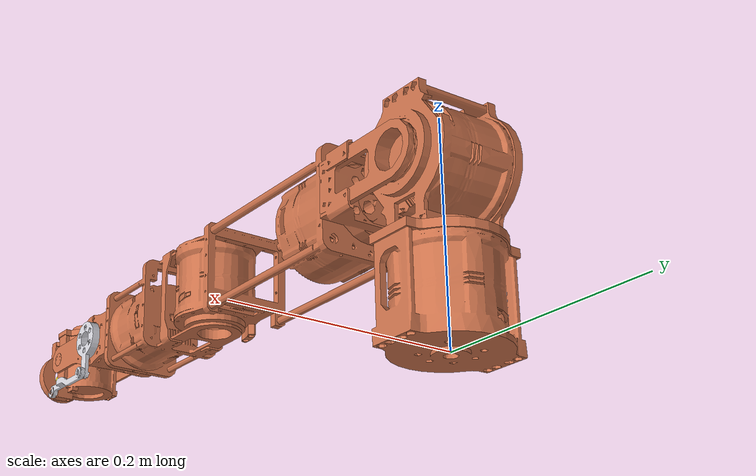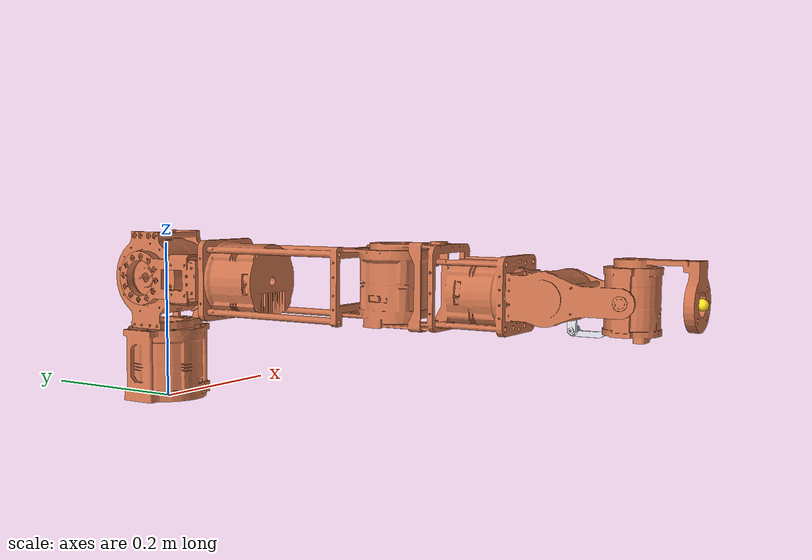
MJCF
<mujoco model="RightArm">
  <compiler angle="radian" meshdir="../meshes" autolimits="true"/>
  <option timestep="0.00050000000000000001" gravity="0 0 -9.8066499999999994" integrator="implicitfast">
    <flag contact="disable"/>
  </option>
  <default>
    <geom contype="0" conaffinity="0" group="1"/>
    <joint damping="0" armature="0" frictionloss="0"/>
  </default>
  <asset>
    <material name="arm" rgba="0.80 0.45 0.30 1"/>
    <material name="link" rgba="0.85 0.85 0.88 1"/>
    <mesh name="body0" file="RA_body0.stl"/>
    <mesh name="body1" file="RA_body1.stl"/>
    <mesh name="body2" file="RA_body2.stl"/>
    <mesh name="body3" file="RA_body3.stl"/>
    <mesh name="body4" file="RA_body4.stl"/>
    <mesh name="body5" file="RA_body5.stl"/>
    <mesh name="body6" file="RA_body6.stl"/>
    <mesh name="body6_1" file="RA_body6_1.stl"/>
    <mesh name="body6_2" file="RA_body6_2.stl"/>
    <mesh name="body7" file="RA_body7.stl"/>
  </asset>
  <worldbody>
    <body gravcomp="1" name="body0">
      <inertial pos="0.00012770520196475298 9.1361610239260553e-05 0.04571399838334321" quat="0.6535443661797038 -0.66947149876892997 -0.23812575382558515 -0.26073703061868425" mass="0.22506118803030101" diaginertia="0.00038989042311014333 0.00039101412526498319 0.00047745618191614449"/>
      <geom name="body0" type="mesh" mesh="body0" pos="0 0 0" quat="1 0 0 0" material="arm"/>
      <body gravcomp="1" name="body1" pos="0 0 0.087999999999999995" quat="0.70710678118654635 5.5114950436610495e-19 -5.5114950436612402e-19 0.70710678118654868">
        <inertial pos="0.0001200000000000391 0.0051600000000000005 0.067040000000000016" quat="0.0093791081210858693 0.71254226616800653 -0.0094392613545968545 -0.70150299471926292" mass="1.6893313299999999" diaginertia="0.00072591301083000011 0.00087121415936000006 0.0011051409326699999"/>
        <joint name="joint1" type="hinge" axis="0 0 1"/>
        <geom name="body1" type="mesh" mesh="body1" pos="0 0 0" quat="1 0 0 0" material="arm"/>
        <body gravcomp="1" name="body2" pos="5.6843418860808016e-17 0 0.068999999999999978" quat="0.70710678118654624 -0.70710678118654879 1.3246252948841205e-15 -3.6130749672804068e-15">
          <inertial pos="-0.054609999999999929 -2.0110493623551311e-16 0.0014199999999998092" quat="0.61880287621742269 -0.6189975979942054 -0.34199933542850425 -0.34199624066488005" mass="0.28492247999999998" diaginertia="0.00050851407026000013 0.00062434844308000004 0.00092577401321000045"/>
          <joint name="joint2" type="hinge" axis="0 0 1"/>
          <geom name="body2" type="mesh" mesh="body2" pos="0 0 0" quat="1 0 0 0" material="arm"/>
          <body gravcomp="1" name="body3" pos="5.6843418860808016e-17 0 1.8143800820083272e-31" quat="0.50000000000000344 -0.49999999999999989 0.5 -0.49999999999999667">
            <inertial pos="-6.000000000069118e-05 -0.0028999999999993159 -0.21154000000000012" quat="0.99967355976481898 0.0156700211630467 -0.00048513764667103244 -0.020173968011982756" mass="2.77074" diaginertia="0.0023939762876900006 0.03039982470298001 0.030565316794150001"/>
            <joint name="joint3" type="hinge" axis="0 0 1"/>
            <geom name="body3" type="mesh" mesh="body3" pos="0 0 0" quat="1 0 0 0" material="arm"/>
            <body gravcomp="1" name="body4" pos="-1.1368683772161603e-15 1.1082635780607589e-15 -0.34300000000000014" quat="0.49999999999999911 0.50000000000000255 0.49999999999999922 0.49999999999999911">
              <inertial pos="1.027e-05 -0.11099718999999997 0.00086007999999995928" quat="0.52765148426945974 -0.47087420763857035 -0.53292684611590269 0.46459699570481711" mass="1.0636289400000001" diaginertia="0.0012926655092700004 0.002013978504470001 0.0021339417205499998"/>
              <joint name="joint4" type="hinge" axis="0 0 1"/>
              <geom name="body4" type="mesh" mesh="body4" pos="0 0 0" quat="1 0 0 0" material="arm"/>
              <body gravcomp="1" name="body5" pos="0 0 0" quat="0.70710678118654624 0.70710678118654879 0 0">
                <inertial pos="0.00278232 -0.00057071999999933716 0.1940323600000001" quat="0.64947998209879554 -0.66250655821859161 0.25198395059485407 0.27525424940028503" mass="0.50246429000000004" diaginertia="0.00036873810948000001 0.00040056636726000007 0.00053582859242000045"/>
                <joint name="joint5" type="hinge" axis="0 0 1"/>
                <geom name="body5" type="mesh" mesh="body5" pos="0 0 0" quat="1 0 0 0" material="arm"/>
                <body gravcomp="1" name="body6" pos="0 9.0949470177292826e-16 0.27400000000000008" quat="0.5 0.50000000000000167 0.50000000000000011 0.49999999999999833">
                  <inertial pos="0.0020795900000000148 0.00067135999999999867 0.0004178499999999904" quat="0.69911865758317926 0.71131555756622311 0.019598783256876716 -0.069851040637892839" mass="0.43643890000000002" diaginertia="0.00022973661308000009 0.00029416392968000009 0.00032880413160000013"/>
                  <joint name="joint6" type="hinge" axis="0 0 1"/>
                  <geom name="body6" type="mesh" mesh="body6" pos="0 0 0" quat="1 0 0 0" material="arm"/>
                  <body gravcomp="1" name="body6_1" pos="-0.039001995086748904 -9.8826060974488424e-07 0.043799999999654234" quat="1 -5.745183734802853e-32 1.6714233167284595e-31 -1.1046593809031588e-18">
                    <inertial pos="0.00063406033682392778 -0.038599866212972983 0.0011046676994783315" quat="0.67192117085257386 -0.21958076417444045 -0.28552398828206704 0.64713389671703725" mass="0.0073318301935494804" diaginertia="5.153525717408367e-07 5.5489111252506328e-06 6.0642030549609197e-06"/>
                    <joint name="joint6_1" type="hinge" axis="0 0 1"/>
                    <geom name="body6_1" type="mesh" mesh="body6_1" pos="0 0 0" quat="1 0 0 0" material="link"/>
                    <body gravcomp="1" name="body6_2" pos="1.9950990897825705e-06 -0.079999999975114033 0.007000000000089884" quat="1 -5.745183734802853e-32 1.6714233167284595e-31 -1.1046593809031588e-18">
                      <inertial pos="0.033589619434186008 8.5114222884729412e-07 -0.0098189059218012145" quat="0.99858245324940198 4.4309279586938388e-06 -8.1239472323267875e-06 -0.053226722393685394" mass="0.020689757859853899" diaginertia="2.1338943438120754e-06 5.4407092235939467e-06 7.2435213596139281e-06"/>
                      <joint name="joint6_2" type="hinge" axis="0 0 1"/>
                      <geom name="body6_2" type="mesh" mesh="body6_2" pos="0 0 0" quat="1 0 0 0" material="link"/>
                    </body>
                  </body>
                  <body gravcomp="1" name="body7" pos="0 0 0" quat="0.50000000000000167 0.5 0.50000000000000178 0.49999999999999661">
                    <inertial pos="0.045852704199999997 -0.00010924339999983992 0.017417087799999956" quat="0.67831682640419522 0.67374628826443639 0.20672551640694647 -0.20788646645012129" mass="0.092255301400000003" diaginertia="3.536857528200002e-05 0.00010400188325830003 0.00011034316465130009"/>
                    <joint name="joint7" type="hinge" axis="0 0 1"/>
                    <geom name="body7" type="mesh" mesh="body7" pos="0 0 0" quat="1 0 0 0" material="arm"/>
                    <site name="tool" pos="0.06849999999999995 2.3916647171075452e-16 -5.6843418860808016e-17" quat="1 -1.4816809819461326e-32 7.794431039697685e-19 1.5487957239772115e-31" size="0.006" rgba="1 0.9 0.1 1" group="2"/>
                  </body>
                </body>
              </body>
            </body>
          </body>
        </body>
      </body>
    </body>
  </worldbody>
  <equality>
    <!-- RecurDyn RevJoint6_3@RightArm: revolute about x, closed as a point (planar loop) -->
    <connect name="joint6_3" body1="body5" body2="body6_2" anchor="0.0447999999997446 -1.793409865058493e-13 0.19400000000005602" solref="0.002 1" solimp="0.98999999999999999 0.999 0.0001 0.5 2"/>
  </equality>
  <actuator>
    <position name="servo1" joint="joint1" kp="449.432" kv="35.7647" ctrlrange="-3.141593 3.141593"/>  <!-- M_ii 0.712 kg*m^2 -->
    <position name="servo2" joint="joint2" kp="466.36" kv="37.1117" ctrlrange="-3.141593 3.141593"/>  <!-- M_ii 0.738 kg*m^2 -->
    <position name="servo3" joint="joint3" kp="68.9367" kv="5.48581" ctrlrange="-3.141593 3.141593"/>  <!-- M_ii 0.109 kg*m^2 -->
    <position name="servo4" joint="joint4" kp="49.5754" kv="3.94508" ctrlrange="-3.141593 3.141593"/>  <!-- M_ii 0.0785 kg*m^2 -->
    <position name="servo5" joint="joint5" kp="0.550471" kv="0.0438051" ctrlrange="-3.141593 3.141593"/>  <!-- M_ii 0.000871 kg*m^2 -->
    <position name="servo6" joint="joint6" kp="0.502338" kv="0.0399748" ctrlrange="-1.383173 1.391900"/>  <!-- M_ii 0.000795 kg*m^2; linkage singular at -89.2 / 89.8 deg -->
    <position name="servo7" joint="joint7" kp="0.174589" kv="0.0138934" ctrlrange="-3.141593 3.141593"/>  <!-- M_ii 0.000276 kg*m^2 -->
  </actuator>
  <sensor>
    <framepos name="tool_pos" objtype="site" objname="tool"/>
    <framequat name="tool_quat" objtype="site" objname="tool"/>
    <jointpos name="joint1_q" joint="joint1"/>
    <jointvel name="joint1_qd" joint="joint1"/>
    <actuatorfrc name="servo1_tau" actuator="servo1"/>
    <jointpos name="joint2_q" joint="joint2"/>
    <jointvel name="joint2_qd" joint="joint2"/>
    <actuatorfrc name="servo2_tau" actuator="servo2"/>
    <jointpos name="joint3_q" joint="joint3"/>
    <jointvel name="joint3_qd" joint="joint3"/>
    <actuatorfrc name="servo3_tau" actuator="servo3"/>
    <jointpos name="joint4_q" joint="joint4"/>
    <jointvel name="joint4_qd" joint="joint4"/>
    <actuatorfrc name="servo4_tau" actuator="servo4"/>
    <jointpos name="joint5_q" joint="joint5"/>
    <jointvel name="joint5_qd" joint="joint5"/>
    <actuatorfrc name="servo5_tau" actuator="servo5"/>
    <jointpos name="joint6_q" joint="joint6"/>
    <jointvel name="joint6_qd" joint="joint6"/>
    <actuatorfrc name="servo6_tau" actuator="servo6"/>
    <jointpos name="joint7_q" joint="joint7"/>
    <jointvel name="joint7_qd" joint="joint7"/>
    <actuatorfrc name="servo7_tau" actuator="servo7"/>
  </sensor>
</mujoco>
